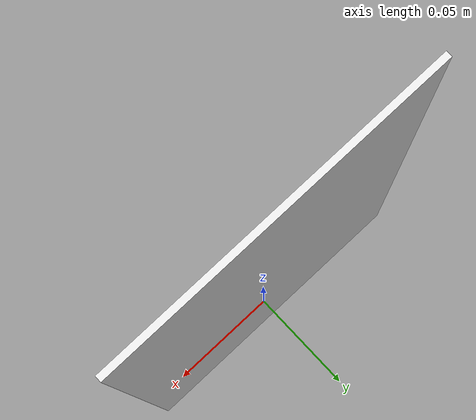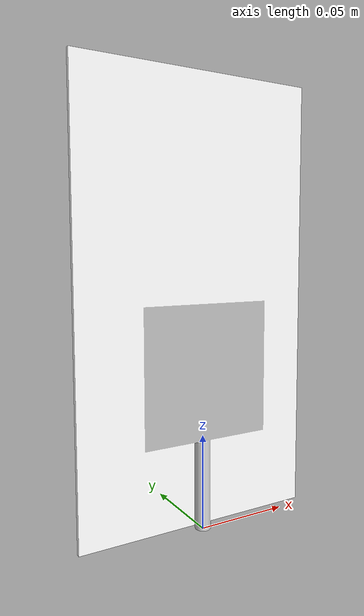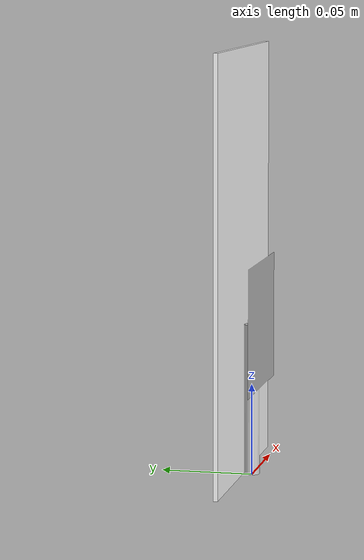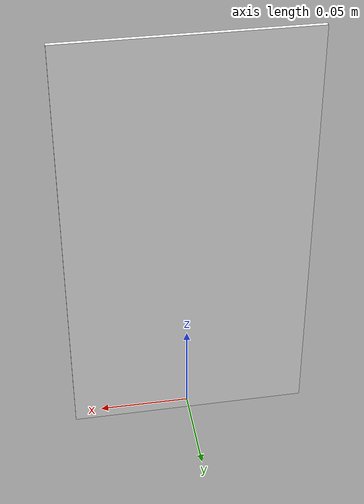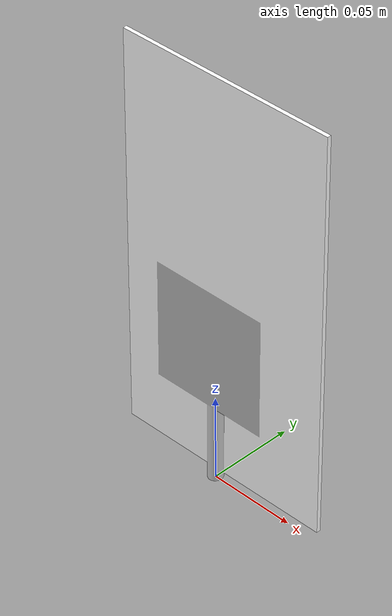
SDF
<?xml version="1.0" ?>
<sdf version="1.5">
    <model name='street_sign_turnban'>
      <static>1</static>
      <link name='link'>
        <collision name='collision'>
          <geometry>
            <mesh>
              <uri>model://street_sign_turnban/meshes/roadsing_turnban_v2.dae</uri>
              <scale>0.116 0.116 0.116</scale>
            </mesh>
          </geometry>
          <max_contacts>10</max_contacts>
          <surface>
            <contact>
              <ode/>
            </contact>
            <bounce/>
            <friction>
              <ode/>
            </friction>
          </surface>
        </collision>
        <visual name='visual'>
          <cast_shadows>0</cast_shadows>
          <geometry>
            <mesh>
              <uri>model://street_sign_turnban/meshes/roadsing_turnban_v2.dae</uri>
              <scale>0.116 0.116 0.116</scale>
            </mesh>
          </geometry>
        </visual>
        <self_collide>0</self_collide>
        <kinematic>0</kinematic>
        <gravity>1</gravity>
      </link>
      <pose>0 0 0 0 -0 0</pose>
    </model>
</sdf>
